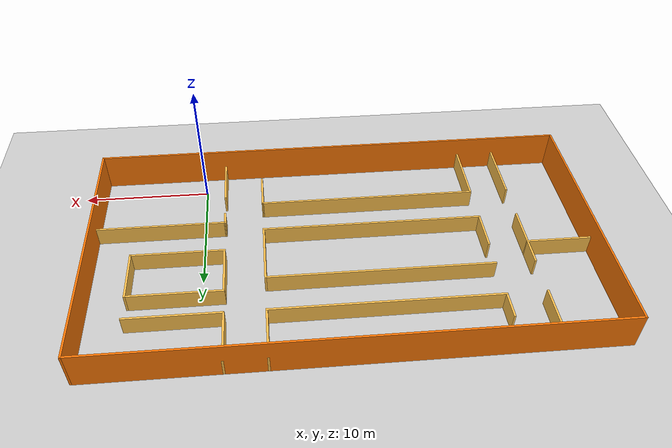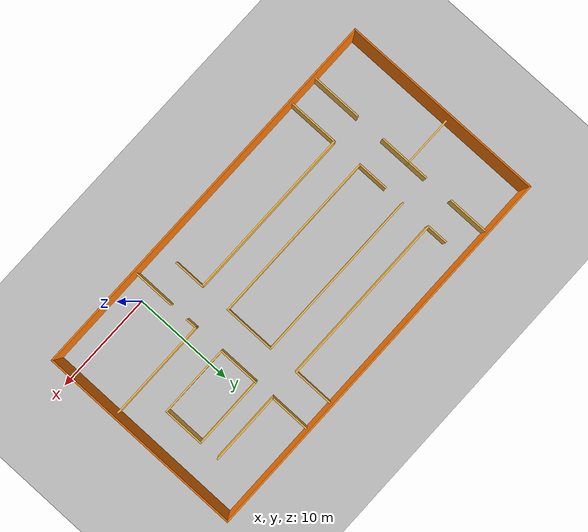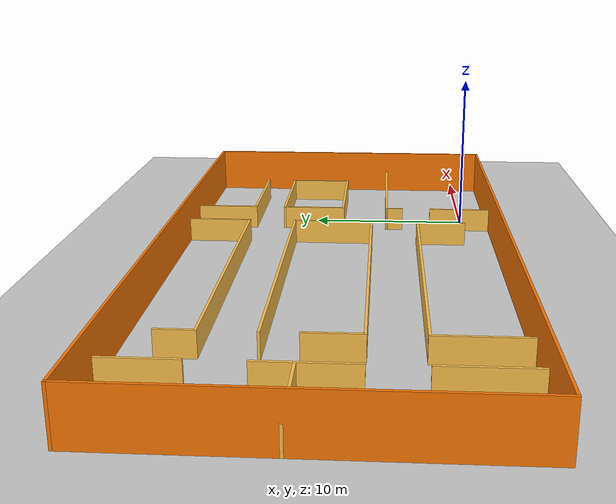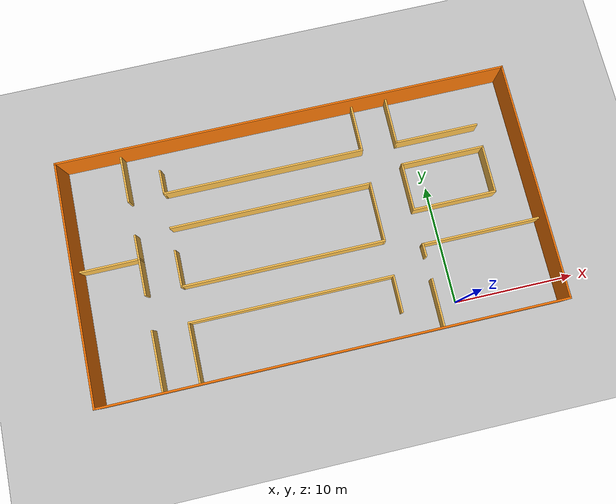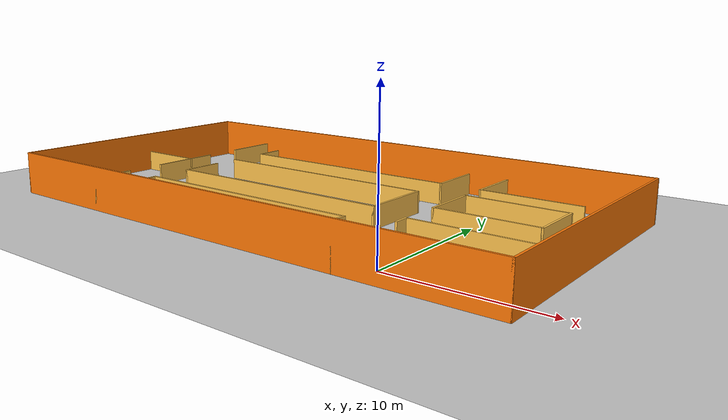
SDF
<sdf version="1.6">
 <world name="default">
  <light name="sun" type="directional">
   <pose>0 0 10 0 -0 0</pose>
   <diffuse>0.8 0.8 0.8 1</diffuse>
   <specular>0.1 0.1 0.1 1</specular>
   <attenuation>
    <range>1000</range>
    <constant>0.9</constant>
    <linear>0.01</linear>
    <quadratic>0.001</quadratic>
   </attenuation>
   <direction>-0.5 0.5 -1</direction>
  </light>
  <model name="ground_plane">
   <static>1</static>
   <link name="link">
    <collision name="collision">
     <geometry><plane><normal>0 0 1</normal><size>100 100</size></plane></geometry>
     <surface><friction><ode><mu>100</mu><mu2>50</mu2></ode></friction></surface>
    </collision>
    <visual name="visual">
     <cast_shadows>0</cast_shadows>
     <geometry><plane><normal>0 0 1</normal><size>100 100</size></plane></geometry>
     <material>
      <script><uri>file://media/materials/scripts/gazebo.material</uri><name>Gazebo/Grey</name></script>
     </material>
    </visual>
   </link>
  </model>
  <gravity>0 0 -9.8</gravity>
  <magnetic_field>6e-06 2.3e-05 -4.2e-05</magnetic_field>
  <atmosphere type="adiabatic"/>
  <physics name="default_physics" default="0" type="ode">
   <max_step_size>0.001</max_step_size>
   <real_time_factor>1</real_time_factor>
   <real_time_update_rate>1000</real_time_update_rate>
  </physics>
  <scene><ambient>0.4 0.4 0.4 1</ambient><background>0.7 0.7 0.7 1</background><shadows>1</shadows></scene>
  <spherical_coordinates>
   <surface_model>EARTH_WGS84</surface_model>
   <latitude_deg>0</latitude_deg>
   <longitude_deg>0</longitude_deg>
   <elevation>0</elevation>
   <heading_deg>0</heading_deg>
  </spherical_coordinates>
  <model name="factory.world">
   <pose>-10.6515 8.16816 0 0 -0 0</pose>
   <link name="Wall_0">
    <collision name="Wall_0_Collision">
     <geometry><box><size>20.15 0.15 3</size></box></geometry>
     <pose>0 0 1.5 0 -0 0</pose>
    </collision>
    <visual name="Wall_0_Visual">
     <pose>0 0 1.5 0 -0 0</pose>
     <geometry><box><size>20.15 0.15 3</size></box></geometry>
     <material>
      <script><uri>file://media/materials/scripts/gazebo.material</uri><name>Gazebo/Grey</name></script>
      <ambient>0.996078 0.47451 0.0196078 1</ambient>
     </material>
    </visual>
    <pose>-19 0 0 0 0 -1.5708</pose>
   </link>
   <link name="Wall_1">
    <collision name="Wall_1_Collision">
     <geometry><box><size>38.15 0.15 3</size></box></geometry>
     <pose>0 0 1.5 0 -0 0</pose>
    </collision>
    <visual name="Wall_1_Visual">
     <pose>0 0 1.5 0 -0 0</pose>
     <geometry><box><size>38.15 0.15 3</size></box></geometry>
     <material>
      <script><uri>file://media/materials/scripts/gazebo.material</uri><name>Gazebo/Grey</name></script>
      <ambient>0.996078 0.47451 0.0196078 1</ambient>
     </material>
    </visual>
    <pose>0 -10 0 0 -0 0</pose>
   </link>
   <link name="Wall_11">
    <collision name="Wall_11_Collision">
     <geometry><box><size>5.15 0.15 1.5</size></box></geometry>
     <pose>0 0 0.75 0 -0 0</pose>
    </collision>
    <visual name="Wall_11_Visual">
     <pose>0 0 0.75 0 -0 0</pose>
     <geometry><box><size>5.15 0.15 1.5</size></box></geometry>
     <material>
      <script><uri>file://media/materials/scripts/gazebo.material</uri><name>Gazebo/Grey</name></script>
      <ambient>1 0.764706 0.305882 1</ambient>
     </material>
    </visual>
    <pose>-11 -7.5 0 0 -0 1.5708</pose>
   </link>
   <link name="Wall_12">
    <collision name="Wall_12_Collision">
     <geometry><box><size>17.15 0.15 1.5</size></box></geometry>
     <pose>0 0 0.75 0 -0 0</pose>
    </collision>
    <visual name="Wall_12_Visual">
     <pose>0 0 0.75 0 -0 0</pose>
     <geometry><box><size>17.15 0.15 1.5</size></box></geometry>
     <material>
      <script><uri>file://media/materials/scripts/gazebo.material</uri><name>Gazebo/Grey</name></script>
      <ambient>1 0.764706 0.305882 1</ambient>
     </material>
    </visual>
    <pose>-2.5 -5 0 0 -0 0</pose>
   </link>
   <link name="Wall_13">
    <collision name="Wall_13_Collision">
     <geometry><box><size>3.15 0.15 1.5</size></box></geometry>
     <pose>0 0 0.75 0 -0 0</pose>
    </collision>
    <visual name="Wall_13_Visual">
     <pose>0 0 0.75 0 -0 0</pose>
     <geometry><box><size>3.15 0.15 1.5</size></box></geometry>
     <material>
      <script><uri>file://media/materials/scripts/gazebo.material</uri><name>Gazebo/Grey</name></script>
      <ambient>1 0.764706 0.305882 1</ambient>
     </material>
    </visual>
    <pose>6 -6.5 0 0 0 -1.5708</pose>
   </link>
   <link name="Wall_15">
    <collision name="Wall_15_Collision">
     <geometry><box><size>3.15 0.15 1.5</size></box></geometry>
     <pose>0 0 0.75 0 -0 0</pose>
    </collision>
    <visual name="Wall_15_Visual">
     <pose>0 0 0.75 0 -0 0</pose>
     <geometry><box><size>3.15 0.15 1.5</size></box></geometry>
     <material>
      <script><uri>file://media/materials/scripts/gazebo.material</uri><name>Gazebo/Grey</name></script>
      <ambient>1 0.764706 0.305882 1</ambient>
     </material>
    </visual>
    <pose>-11 -0.5 0 0 0 -1.5708</pose>
   </link>
   <link name="Wall_16">
    <collision name="Wall_16_Collision">
     <geometry><box><size>17.15 0.15 1.5</size></box></geometry>
     <pose>0 0 0.75 0 -0 0</pose>
    </collision>
    <visual name="Wall_16_Visual">
     <pose>0 0 0.75 0 -0 0</pose>
     <geometry><box><size>17.15 0.15 1.5</size></box></geometry>
     <material>
      <script><uri>file://media/materials/scripts/gazebo.material</uri><name>Gazebo/Grey</name></script>
      <ambient>1 0.764706 0.305882 1</ambient>
     </material>
    </visual>
    <pose>-2.5 -2 0 0 -0 0</pose>
   </link>
   <link name="Wall_17">
    <collision name="Wall_17_Collision">
     <geometry><box><size>5.15 0.15 1.5</size></box></geometry>
     <pose>0 0 0.75 0 -0 0</pose>
    </collision>
    <visual name="Wall_17_Visual">
     <pose>0 0 0.75 0 -0 0</pose>
     <geometry><box><size>5.15 0.15 1.5</size></box></geometry>
     <material>
      <script><uri>file://media/materials/scripts/gazebo.material</uri><name>Gazebo/Grey</name></script>
      <ambient>1 0.764706 0.305882 1</ambient>
     </material>
    </visual>
    <pose>6 0.5 0 0 -0 1.5708</pose>
   </link>
   <link name="Wall_18">
    <collision name="Wall_18_Collision">
     <geometry><box><size>17.15 0.15 1.5</size></box></geometry>
     <pose>0 0 0.75 0 -0 0</pose>
    </collision>
    <visual name="Wall_18_Visual">
     <pose>0 0 0.75 0 -0 0</pose>
     <geometry><box><size>17.15 0.15 1.5</size></box></geometry>
     <material>
      <script><uri>file://media/materials/scripts/gazebo.material</uri><name>Gazebo/Grey</name></script>
      <ambient>1 0.764706 0.305882 1</ambient>
     </material>
    </visual>
    <pose>-2.5 3 0 0 -0 3.14159</pose>
   </link>
   <link name="Wall_2">
    <collision name="Wall_2_Collision">
     <geometry><box><size>20.15 0.15 3</size></box></geometry>
     <pose>0 0 1.5 0 -0 0</pose>
    </collision>
    <visual name="Wall_2_Visual">
     <pose>0 0 1.5 0 -0 0</pose>
     <geometry><box><size>20.15 0.15 3</size></box></geometry>
     <material>
      <script><uri>file://media/materials/scripts/gazebo.material</uri><name>Gazebo/Grey</name></script>
      <ambient>0.996078 0.47451 0.0196078 1</ambient>
     </material>
    </visual>
    <pose>19 0 0 0 -0 1.5708</pose>
   </link>
   <link name="Wall_20">
    <collision name="Wall_20_Collision">
     <geometry><box><size>2.15 0.15 1.5</size></box></geometry>
     <pose>0 0 0.75 0 -0 0</pose>
    </collision>
    <visual name="Wall_20_Visual">
     <pose>0 0 0.75 0 -0 0</pose>
     <geometry><box><size>2.15 0.15 1.5</size></box></geometry>
     <material>
      <script><uri>file://media/materials/scripts/gazebo.material</uri><name>Gazebo/Grey</name></script>
      <ambient>1 0.764706 0.305882 1</ambient>
     </material>
    </visual>
    <pose>-11 7 0 0 0 -1.5708</pose>
   </link>
   <link name="Wall_21">
    <collision name="Wall_21_Collision">
     <geometry><box><size>17.15 0.15 1.5</size></box></geometry>
     <pose>0 0 0.75 0 -0 0</pose>
    </collision>
    <visual name="Wall_21_Visual">
     <pose>0 0 0.75 0 -0 0</pose>
     <geometry><box><size>17.15 0.15 1.5</size></box></geometry>
     <material>
      <script><uri>file://media/materials/scripts/gazebo.material</uri><name>Gazebo/Grey</name></script>
      <ambient>1 0.764706 0.305882 1</ambient>
     </material>
    </visual>
    <pose>-2.5 6 0 0 -0 0</pose>
   </link>
   <link name="Wall_22">
    <collision name="Wall_22_Collision">
     <geometry><box><size>4.15 0.15 1.5</size></box></geometry>
     <pose>0 0 0.75 0 -0 0</pose>
    </collision>
    <visual name="Wall_22_Visual">
     <pose>0 0 0.75 0 -0 0</pose>
     <geometry><box><size>4.15 0.15 1.5</size></box></geometry>
     <material>
      <script><uri>file://media/materials/scripts/gazebo.material</uri><name>Gazebo/Grey</name></script>
      <ambient>1 0.764706 0.305882 1</ambient>
     </material>
    </visual>
    <pose>6 8 0 0 -0 1.5708</pose>
   </link>
   <link name="Wall_26">
    <collision name="Wall_26_Collision">
     <geometry><box><size>10.15 0.15 1.5</size></box></geometry>
     <pose>0 0 0.75 0 -0 0</pose>
    </collision>
    <visual name="Wall_26_Visual">
     <pose>0 0 0.75 0 -0 0</pose>
     <geometry><box><size>10.15 0.15 1.5</size></box></geometry>
     <material>
      <script><uri>file://media/materials/scripts/gazebo.material</uri><name>Gazebo/Grey</name></script>
      <ambient>1 0.764706 0.305882 1</ambient>
     </material>
    </visual>
    <pose>14 -3 0 0 -0 0</pose>
   </link>
   <link name="Wall_28">
    <collision name="Wall_28_Collision">
     <geometry><box><size>4.15 0.15 1.5</size></box></geometry>
     <pose>0 0 0.75 0 -0 0</pose>
    </collision>
    <visual name="Wall_28_Visual">
     <pose>0 0 0.75 0 -0 0</pose>
     <geometry><box><size>4.15 0.15 1.5</size></box></geometry>
     <material>
      <script><uri>file://media/materials/scripts/gazebo.material</uri><name>Gazebo/Grey</name></script>
      <ambient>1 0.764706 0.305882 1</ambient>
     </material>
    </visual>
    <pose>9 2 0 0 0 -1.5708</pose>
   </link>
   <link name="Wall_29">
    <collision name="Wall_29_Collision">
     <geometry><box><size>7.15 0.15 1.5</size></box></geometry>
     <pose>0 0 0.75 0 -0 0</pose>
    </collision>
    <visual name="Wall_29_Visual">
     <pose>0 0 0.75 0 -0 0</pose>
     <geometry><box><size>7.15 0.15 1.5</size></box></geometry>
     <material>
      <script><uri>file://media/materials/scripts/gazebo.material</uri><name>Gazebo/Grey</name></script>
      <ambient>1 0.764706 0.305882 1</ambient>
     </material>
    </visual>
    <pose>12.5 0 0 0 -0 0</pose>
   </link>
   <link name="Wall_3">
    <collision name="Wall_3_Collision">
     <geometry><box><size>38.15 0.15 3</size></box></geometry>
     <pose>0 0 1.5 0 -0 0</pose>
    </collision>
    <visual name="Wall_3_Visual">
     <pose>0 0 1.5 0 -0 0</pose>
     <geometry><box><size>38.15 0.15 3</size></box></geometry>
     <material>
      <script><uri>file://media/materials/scripts/gazebo.material</uri><name>Gazebo/Grey</name></script>
      <ambient>0.996078 0.47451 0.0196078 1</ambient>
     </material>
    </visual>
    <pose>0 10 0 0 -0 3.14159</pose>
   </link>
   <link name="Wall_30">
    <collision name="Wall_30_Collision">
     <geometry><box><size>4.15 0.15 1.5</size></box></geometry>
     <pose>0 0 0.75 0 -0 0</pose>
    </collision>
    <visual name="Wall_30_Visual">
     <pose>0 0 0.75 0 -0 0</pose>
     <geometry><box><size>4.15 0.15 1.5</size></box></geometry>
     <material>
      <script><uri>file://media/materials/scripts/gazebo.material</uri><name>Gazebo/Grey</name></script>
      <ambient>1 0.764706 0.305882 1</ambient>
     </material>
    </visual>
    <pose>16 2 0 0 -0 1.5708</pose>
   </link>
   <link name="Wall_31">
    <collision name="Wall_31_Collision">
     <geometry><box><size>7.15 0.15 1.5</size></box></geometry>
     <pose>0 0 0.75 0 -0 0</pose>
    </collision>
    <visual name="Wall_31_Visual">
     <pose>0 0 0.75 0 -0 0</pose>
     <geometry><box><size>7.15 0.15 1.5</size></box></geometry>
     <material>
      <script><uri>file://media/materials/scripts/gazebo.material</uri><name>Gazebo/Grey</name></script>
      <ambient>1 0.764706 0.305882 1</ambient>
     </material>
    </visual>
    <pose>12.5 4 0 0 -0 3.14159</pose>
   </link>
   <link name="Wall_34">
    <collision name="Wall_34_Collision">
     <geometry><box><size>4.15 0.15 1.5</size></box></geometry>
     <pose>0 0 0.75 0 -0 0</pose>
    </collision>
    <visual name="Wall_34_Visual">
     <pose>0 0 0.75 0 -0 0</pose>
     <geometry><box><size>4.15 0.15 1.5</size></box></geometry>
     <material>
      <script><uri>file://media/materials/scripts/gazebo.material</uri><name>Gazebo/Grey</name></script>
      <ambient>1 0.764706 0.305882 1</ambient>
     </material>
    </visual>
    <pose>9 8 0 0 0 -1.5708</pose>
   </link>
   <link name="Wall_35">
    <collision name="Wall_35_Collision">
     <geometry><box><size>7.15 0.15 1.5</size></box></geometry>
     <pose>0 0 0.75 0 -0 0</pose>
    </collision>
    <visual name="Wall_35_Visual">
     <pose>0 0 0.75 0 -0 0</pose>
     <geometry><box><size>7.15 0.15 1.5</size></box></geometry>
     <material>
      <script><uri>file://media/materials/scripts/gazebo.material</uri><name>Gazebo/Grey</name></script>
      <ambient>1 0.764706 0.305882 1</ambient>
     </material>
    </visual>
    <pose>12.5 6 0 0 -0 0</pose>
   </link>
   <link name="Wall_38">
    <collision name="Wall_38_Collision">
     <geometry><box><size>1.15013 0.15 1.5</size></box></geometry>
     <pose>0 0 0.75 0 -0 0</pose>
    </collision>
    <visual name="Wall_38_Visual">
     <pose>0 0 0.75 0 -0 0</pose>
     <geometry><box><size>1.15013 0.15 1.5</size></box></geometry>
     <material>
      <script><uri>file://media/materials/scripts/gazebo.material</uri><name>Gazebo/Grey</name></script>
      <ambient>1 0.764706 0.305882 1</ambient>
     </material>
    </visual>
    <pose>9.008 -3.5 0 0 -0 1.58679</pose>
   </link>
   <link name="Wall_40">
    <collision name="Wall_40_Collision">
     <geometry><box><size>4.15 0.15 1.5</size></box></geometry>
     <pose>0 0 0.75 0 -0 0</pose>
    </collision>
    <visual name="Wall_40_Visual">
     <pose>0 0 0.75 0 -0 0</pose>
     <geometry><box><size>4.15 0.15 1.5</size></box></geometry>
     <material>
      <script><uri>file://media/materials/scripts/gazebo.material</uri><name>Gazebo/Grey</name></script>
      <ambient>1 0.764706 0.305882 1</ambient>
     </material>
    </visual>
    <pose>9 -8 0 0 0 -1.5708</pose>
   </link>
   <link name="Wall_42">
    <collision name="Wall_42_Collision">
     <geometry><box><size>5.15 0.15 1.5</size></box></geometry>
     <pose>0 0 0.75 0 -0 0</pose>
    </collision>
    <visual name="Wall_42_Visual">
     <pose>0 0 0.75 0 -0 0</pose>
     <geometry><box><size>5.15 0.15 1.5</size></box></geometry>
     <material>
      <script><uri>file://media/materials/scripts/gazebo.material</uri><name>Gazebo/Grey</name></script>
      <ambient>1 0.764706 0.305882 1</ambient>
     </material>
    </visual>
    <pose>-16.5 1 0 0 -0 0</pose>
   </link>
   <link name="Wall_5">
    <collision name="Wall_5_Collision">
     <geometry><box><size>5.15 0.15 1.5</size></box></geometry>
     <pose>0 0 0.75 0 -0 0</pose>
    </collision>
    <visual name="Wall_5_Visual">
     <pose>0 0 0.75 0 -0 0</pose>
     <geometry><box><size>5.15 0.15 1.5</size></box></geometry>
     <material>
      <script><uri>file://media/materials/scripts/gazebo.material</uri><name>Gazebo/Grey</name></script>
      <ambient>1 0.764706 0.305882 1</ambient>
     </material>
    </visual>
    <pose>-14 -7.5 0 0 0 -1.5708</pose>
   </link>
   <link name="Wall_7">
    <collision name="Wall_7_Collision">
     <geometry><box><size>5.15 0.15 1.5</size></box></geometry>
     <pose>0 0 0.75 0 -0 0</pose>
    </collision>
    <visual name="Wall_7_Visual">
     <pose>0 0 0.75 0 -0 0</pose>
     <geometry><box><size>5.15 0.15 1.5</size></box></geometry>
     <material>
      <script><uri>file://media/materials/scripts/gazebo.material</uri><name>Gazebo/Grey</name></script>
      <ambient>1 0.764706 0.305882 1</ambient>
     </material>
    </visual>
    <pose>-14 0.5 0 0 -0 1.5708</pose>
   </link>
   <link name="Wall_9">
    <collision name="Wall_9_Collision">
     <geometry><box><size>4.15 0.15 1.5</size></box></geometry>
     <pose>0 0 0.75 0 -0 0</pose>
    </collision>
    <visual name="Wall_9_Visual">
     <pose>0 0 0.75 0 -0 0</pose>
     <geometry><box><size>4.15 0.15 1.5</size></box></geometry>
     <material>
      <script><uri>file://media/materials/scripts/gazebo.material</uri><name>Gazebo/Grey</name></script>
      <ambient>1 0.764706 0.305882 1</ambient>
     </material>
    </visual>
    <pose>-14 8 0 0 -0 1.5708</pose>
   </link>
   <static>1</static>
  </model>
 </world>
</sdf>
